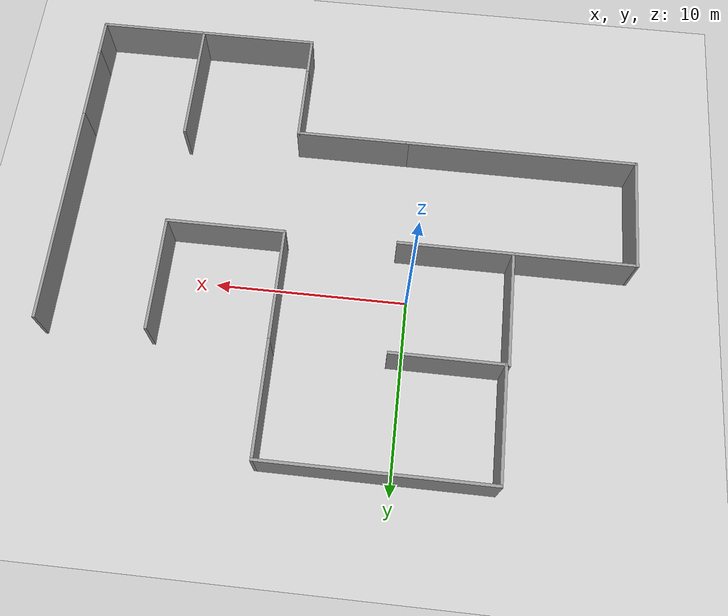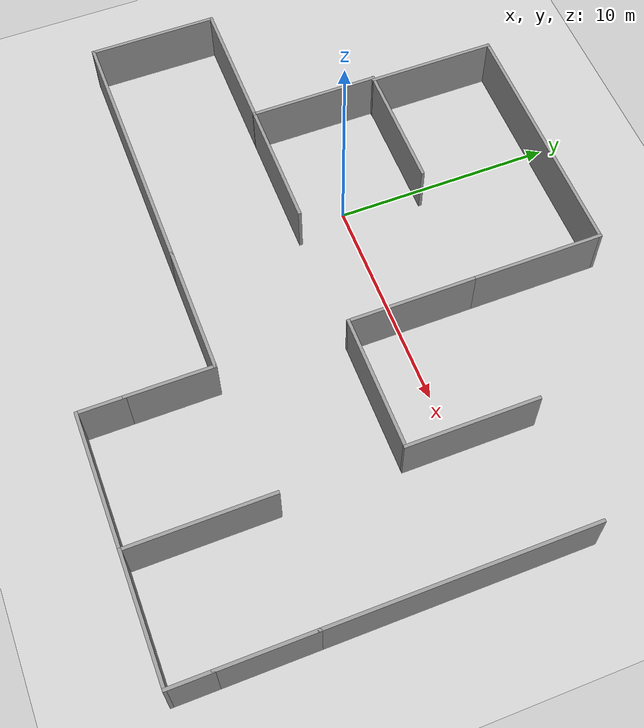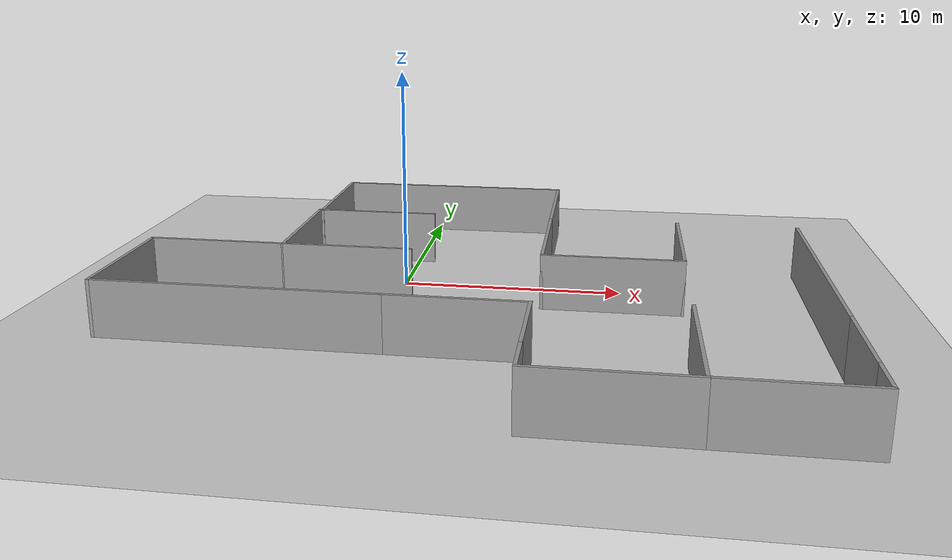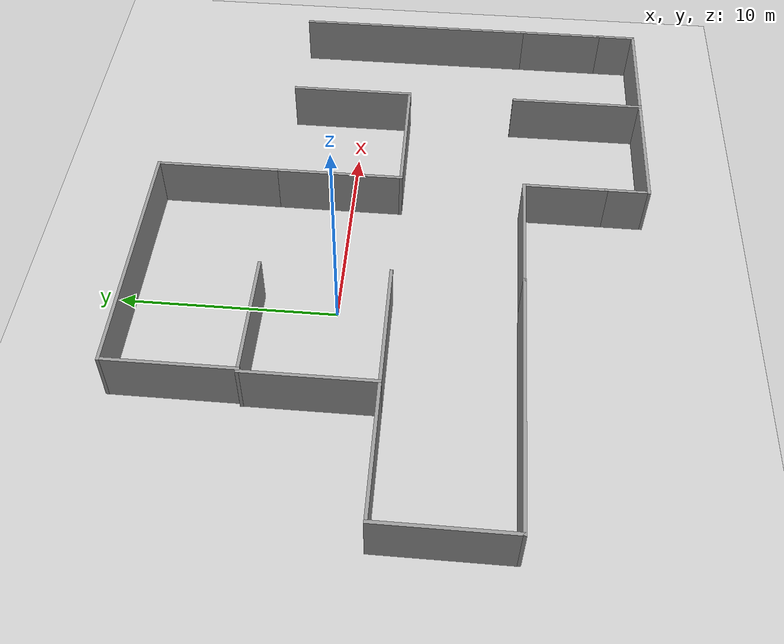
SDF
<sdf version="1.7">
 <world name="default">
  <light name="sun" type="directional">
   <pose>0 0 10 0 -0 0</pose>
   <diffuse>0.8 0.8 0.8 1</diffuse>
   <specular>0.1 0.1 0.1 1</specular>
   <attenuation>
    <range>1000</range>
    <constant>0.9</constant>
    <linear>0.01</linear>
    <quadratic>0.001</quadratic>
   </attenuation>
   <direction>-0.5 0.5 -1</direction>
   <spot><inner_angle>0</inner_angle><outer_angle>0</outer_angle><falloff>0</falloff></spot>
  </light>
  <model name="ground_plane">
   <static>1</static>
   <link name="link">
    <collision name="collision">
     <geometry><plane><normal>0 0 1</normal><size>100 100</size></plane></geometry>
     <surface><friction><ode><mu>100</mu><mu2>50</mu2></ode></friction></surface>
    </collision>
    <visual name="visual">
     <cast_shadows>0</cast_shadows>
     <geometry><plane><normal>0 0 1</normal><size>100 100</size></plane></geometry>
     <material>
      <script><uri>file://media/materials/scripts/gazebo.material</uri><name>Gazebo/Grey</name></script>
     </material>
    </visual>
   </link>
  </model>
  <gravity>0 0 -9.8</gravity>
  <magnetic_field>6e-06 2.3e-05 -4.2e-05</magnetic_field>
  <atmosphere type="adiabatic"/>
  <physics name="default_physics" default="0" type="ode">
   <max_step_size>0.001</max_step_size>
   <real_time_factor>1</real_time_factor>
   <real_time_update_rate>1000</real_time_update_rate>
  </physics>
  <scene><ambient>0.4 0.4 0.4 1</ambient><background>0.7 0.7 0.7 1</background><shadows>1</shadows></scene>
  <spherical_coordinates>
   <surface_model>EARTH_WGS84</surface_model>
   <latitude_deg>0</latitude_deg>
   <longitude_deg>0</longitude_deg>
   <elevation>0</elevation>
   <heading_deg>0</heading_deg>
  </spherical_coordinates>
  <audio><device>default</device></audio>
  <model name="mazemap1">
   <pose>3.4515 -2.36728 0 0 -0 0</pose>
   <link name="Wall_26">
    <collision name="Wall_26_Collision">
     <geometry><box><size>6.01961 0.15 2.5</size></box></geometry>
     <pose>0 0 1.25 0 -0 0</pose>
    </collision>
    <visual name="Wall_26_Visual">
     <pose>0 0 1.25 0 -0 0</pose>
     <geometry><box><size>6.01961 0.15 2.5</size></box></geometry>
     <material>
      <script><uri>file://media/materials/scripts/gazebo.material</uri><name>Gazebo/Grey</name></script>
      <ambient>1 1 1 1</ambient>
     </material>
     <meta><layer>0</layer></meta>
    </visual>
    <pose>-8.59485 2.93481 0 0 -0 -1.56984</pose>
   </link>
   <link name="Wall_27">
    <collision name="Wall_27_Collision">
     <geometry><box><size>6 0.15 2.5</size></box></geometry>
     <pose>0 0 1.25 0 -0 0</pose>
    </collision>
    <visual name="Wall_27_Visual">
     <pose>0 0 1.25 0 -0 0</pose>
     <geometry><box><size>6 0.15 2.5</size></box></geometry>
     <material>
      <script><uri>file://media/materials/scripts/gazebo.material</uri><name>Gazebo/Grey</name></script>
      <ambient>1 1 1 1</ambient>
     </material>
     <meta><layer>0</layer></meta>
    </visual>
    <pose>-5.65 1e-06 0 0 -0 0</pose>
   </link>
   <link name="Wall_29">
    <collision name="Wall_29_Collision">
     <geometry><box><size>6 0.15 2.5</size></box></geometry>
     <pose>0 0 1.25 0 -0 0</pose>
    </collision>
    <visual name="Wall_29_Visual">
     <pose>0 0 1.25 0 -0 0</pose>
     <geometry><box><size>6 0.15 2.5</size></box></geometry>
     <material>
      <script><uri>file://media/materials/scripts/gazebo.material</uri><name>Gazebo/Grey</name></script>
      <ambient>1 1 1 1</ambient>
     </material>
     <meta><layer>0</layer></meta>
    </visual>
    <pose>-5.68386 5.86961 0 0 -0 0</pose>
   </link>
   <link name="Wall_32">
    <collision name="Wall_32_Collision">
     <geometry><box><size>6 0.15 2.5</size></box></geometry>
     <pose>0 0 1.25 0 -0 0</pose>
    </collision>
    <visual name="Wall_32_Visual">
     <pose>0 0 1.25 0 -0 0</pose>
     <geometry><box><size>6 0.15 2.5</size></box></geometry>
     <material>
      <script><uri>file://media/materials/scripts/gazebo.material</uri><name>Gazebo/Grey</name></script>
      <ambient>1 1 1 1</ambient>
     </material>
     <meta><layer>0</layer></meta>
    </visual>
    <pose>3.125 2.925 0 0 -0 1.5708</pose>
   </link>
   <link name="Wall_36">
    <collision name="Wall_36_Collision">
     <geometry><box><size>6 0.15 2.5</size></box></geometry>
     <pose>0 0 1.25 0 -0 0</pose>
    </collision>
    <visual name="Wall_36_Visual">
     <pose>0 0 1.25 0 -0 0</pose>
     <geometry><box><size>6 0.15 2.5</size></box></geometry>
     <material>
      <script><uri>file://media/materials/scripts/gazebo.material</uri><name>Gazebo/Grey</name></script>
      <ambient>1 1 1 1</ambient>
     </material>
     <meta><layer>0</layer></meta>
    </visual>
    <pose>3.125 8.775 0 0 -0 1.5708</pose>
   </link>
   <link name="Wall_37">
    <collision name="Wall_37_Collision">
     <geometry><box><size>11.75 0.15 2.5</size></box></geometry>
     <pose>0 0 1.25 0 -0 0</pose>
    </collision>
    <visual name="Wall_37_Visual">
     <pose>0 0 1.25 0 -0 0</pose>
     <geometry><box><size>11.75 0.15 2.5</size></box></geometry>
     <material>
      <script><uri>file://media/materials/scripts/gazebo.material</uri><name>Gazebo/Grey</name></script>
      <ambient>1 1 1 1</ambient>
     </material>
     <meta><layer>0</layer></meta>
    </visual>
    <pose>-2.675 11.7 0 0 -0 3.14159</pose>
   </link>
   <link name="Wall_41">
    <collision name="Wall_41_Collision">
     <geometry><box><size>6 0.15 2.5</size></box></geometry>
     <pose>0 0 1.25 0 -0 0</pose>
    </collision>
    <visual name="Wall_41_Visual">
     <pose>0 0 1.25 0 -0 0</pose>
     <geometry><box><size>6 0.15 2.5</size></box></geometry>
     <material>
      <script><uri>file://media/materials/scripts/gazebo.material</uri><name>Gazebo/Grey</name></script>
      <ambient>1 1 1 1</ambient>
     </material>
     <meta><layer>0</layer></meta>
    </visual>
    <pose>-8.475 8.775 0 0 -0 -1.5708</pose>
   </link>
   <link name="Wall_45">
    <collision name="Wall_45_Collision">
     <geometry><box><size>6 0.15 2.5</size></box></geometry>
     <pose>0 0 1.25 0 -0 0</pose>
    </collision>
    <visual name="Wall_45_Visual">
     <pose>0 0 1.25 0 -0 0</pose>
     <geometry><box><size>6 0.15 2.5</size></box></geometry>
     <material>
      <script><uri>file://media/materials/scripts/gazebo.material</uri><name>Gazebo/Grey</name></script>
      <ambient>1 1 1 1</ambient>
     </material>
     <meta><layer>0</layer></meta>
    </visual>
    <pose>0.2 -5.85 0 0 -0 0</pose>
   </link>
   <link name="Wall_47">
    <collision name="Wall_47_Collision">
     <geometry><box><size>12.25 0.15 2.5</size></box></geometry>
     <pose>0 0 1.25 0 -0 0</pose>
    </collision>
    <visual name="Wall_47_Visual">
     <pose>0 0 1.25 0 -0 0</pose>
     <geometry><box><size>12.25 0.15 2.5</size></box></geometry>
     <material>
      <script><uri>file://media/materials/scripts/gazebo.material</uri><name>Gazebo/Grey</name></script>
      <ambient>1 1 1 1</ambient>
     </material>
     <meta><layer>0</layer></meta>
    </visual>
    <pose>-8.775 -5.85 0 0 -0 3.14159</pose>
   </link>
   <link name="Wall_48">
    <collision name="Wall_48_Collision">
     <geometry><box><size>6 0.15 2.5</size></box></geometry>
     <pose>0 0 1.25 0 -0 0</pose>
    </collision>
    <visual name="Wall_48_Visual">
     <pose>0 0 1.25 0 -0 0</pose>
     <geometry><box><size>6 0.15 2.5</size></box></geometry>
     <material>
      <script><uri>file://media/materials/scripts/gazebo.material</uri><name>Gazebo/Grey</name></script>
      <ambient>1 1 1 1</ambient>
     </material>
     <meta><layer>0</layer></meta>
    </visual>
    <pose>-14.825 -2.925 0 0 -0 1.5708</pose>
   </link>
   <link name="Wall_49">
    <collision name="Wall_49_Collision">
     <geometry><box><size>6.25 0.15 2.5</size></box></geometry>
     <pose>0 0 1.25 0 -0 0</pose>
    </collision>
    <visual name="Wall_49_Visual">
     <pose>0 0 1.25 0 -0 0</pose>
     <geometry><box><size>6.25 0.15 2.5</size></box></geometry>
     <material>
      <script><uri>file://media/materials/scripts/gazebo.material</uri><name>Gazebo/Grey</name></script>
      <ambient>1 1 1 1</ambient>
     </material>
     <meta><layer>0</layer></meta>
    </visual>
    <pose>-11.775 1e-06 0 0 -0 0</pose>
   </link>
   <link name="Wall_51">
    <collision name="Wall_51_Collision">
     <geometry><box><size>6.25 0.15 2.5</size></box></geometry>
     <pose>0 0 1.25 0 -0 0</pose>
    </collision>
    <visual name="Wall_51_Visual">
     <pose>0 0 1.25 0 -0 0</pose>
     <geometry><box><size>6.25 0.15 2.5</size></box></geometry>
     <material>
      <script><uri>file://media/materials/scripts/gazebo.material</uri><name>Gazebo/Grey</name></script>
      <ambient>1 1 1 1</ambient>
     </material>
     <meta><layer>0</layer></meta>
    </visual>
    <pose>6.175 1e-06 0 0 -0 0</pose>
   </link>
   <link name="Wall_52">
    <collision name="Wall_52_Collision">
     <geometry><box><size>6 0.15 2.5</size></box></geometry>
     <pose>0 0 1.25 0 -0 0</pose>
    </collision>
    <visual name="Wall_52_Visual">
     <pose>0 0 1.25 0 -0 0</pose>
     <geometry><box><size>6 0.15 2.5</size></box></geometry>
     <material>
      <script><uri>file://media/materials/scripts/gazebo.material</uri><name>Gazebo/Grey</name></script>
      <ambient>1 1 1 1</ambient>
     </material>
     <meta><layer>0</layer></meta>
    </visual>
    <pose>9.225 2.925 0 0 -0 1.5708</pose>
   </link>
   <link name="Wall_56">
    <collision name="Wall_56_Collision">
     <geometry><box><size>11.75 0.15 2.5</size></box></geometry>
     <pose>0 0 1.25 0 -0 0</pose>
    </collision>
    <visual name="Wall_56_Visual">
     <pose>0 0 1.25 0 -0 0</pose>
     <geometry><box><size>11.75 0.15 2.5</size></box></geometry>
     <material>
      <script><uri>file://media/materials/scripts/gazebo.material</uri><name>Gazebo/Grey</name></script>
      <ambient>1 1 1 1</ambient>
     </material>
     <meta><layer>0</layer></meta>
    </visual>
    <pose>14.825 0.050001 0 0 -0 -1.5708</pose>
   </link>
   <link name="Wall_58">
    <collision name="Wall_58_Collision">
     <geometry><box><size>4 0.15 2.5</size></box></geometry>
     <pose>0 0 1.25 0 -0 0</pose>
    </collision>
    <visual name="Wall_58_Visual">
     <pose>0 0 1.25 0 -0 0</pose>
     <geometry><box><size>4 0.15 2.5</size></box></geometry>
     <material>
      <script><uri>file://media/materials/scripts/gazebo.material</uri><name>Gazebo/Grey</name></script>
      <ambient>1 1 1 1</ambient>
     </material>
     <meta><layer>0</layer></meta>
    </visual>
    <pose>3.125 -7.775 0 0 -0 -1.5708</pose>
   </link>
   <link name="Wall_63">
    <collision name="Wall_63_Collision">
     <geometry><box><size>4.25 0.15 2.5</size></box></geometry>
     <pose>0 0 1.25 0 -0 0</pose>
    </collision>
    <visual name="Wall_63_Visual">
     <pose>0 0 1.25 0 -0 0</pose>
     <geometry><box><size>4.25 0.15 2.5</size></box></geometry>
     <material>
      <script><uri>file://media/materials/scripts/gazebo.material</uri><name>Gazebo/Grey</name></script>
      <ambient>1 1 1 1</ambient>
     </material>
     <meta><layer>0</layer></meta>
    </visual>
    <pose>14.825 -7.8 0 0 -0 -1.5708</pose>
   </link>
   <link name="Wall_64">
    <collision name="Wall_64_Collision">
     <geometry><box><size>2 0.15 2.5</size></box></geometry>
     <pose>0 0 1.25 0 -0 0</pose>
    </collision>
    <visual name="Wall_64_Visual">
     <pose>0 0 1.25 0 -0 0</pose>
     <geometry><box><size>2 0.15 2.5</size></box></geometry>
     <material>
      <script><uri>file://media/materials/scripts/gazebo.material</uri><name>Gazebo/Grey</name></script>
      <ambient>1 1 1 1</ambient>
     </material>
     <meta><layer>0</layer></meta>
    </visual>
    <pose>14.825 -10.775 0 0 -0 -1.5708</pose>
   </link>
   <link name="Wall_65">
    <collision name="Wall_65_Collision">
     <geometry><box><size>5.75 0.15 2.5</size></box></geometry>
     <pose>0 0 1.25 0 -0 0</pose>
    </collision>
    <visual name="Wall_65_Visual">
     <pose>0 0 1.25 0 -0 0</pose>
     <geometry><box><size>5.75 0.15 2.5</size></box></geometry>
     <material>
      <script><uri>file://media/materials/scripts/gazebo.material</uri><name>Gazebo/Grey</name></script>
      <ambient>1 1 1 1</ambient>
     </material>
     <meta><layer>0</layer></meta>
    </visual>
    <pose>12.025 -11.7 0 0 -0 3.14159</pose>
   </link>
   <link name="Wall_68">
    <collision name="Wall_68_Collision">
     <geometry><box><size>6.5 0.15 2.5</size></box></geometry>
     <pose>0 0 1.25 0 -0 0</pose>
    </collision>
    <visual name="Wall_68_Visual">
     <pose>0 0 1.25 0 -0 0</pose>
     <geometry><box><size>6.5 0.15 2.5</size></box></geometry>
     <material>
      <script><uri>file://media/materials/scripts/gazebo.material</uri><name>Gazebo/Grey</name></script>
      <ambient>1 1 1 1</ambient>
     </material>
     <meta><layer>0</layer></meta>
    </visual>
    <pose>9.225 -8.525 0 0 -0 1.5708</pose>
   </link>
   <link name="Wall_70">
    <collision name="Wall_70_Collision">
     <geometry><box><size>6.25 0.15 2.5</size></box></geometry>
     <pose>0 0 1.25 0 -0 0</pose>
    </collision>
    <visual name="Wall_70_Visual">
     <pose>0 0 1.25 0 -0 0</pose>
     <geometry><box><size>6.25 0.15 2.5</size></box></geometry>
     <material>
      <script><uri>file://media/materials/scripts/gazebo.material</uri><name>Gazebo/Grey</name></script>
      <ambient>1 1 1 1</ambient>
     </material>
     <meta><layer>0</layer></meta>
    </visual>
    <pose>6.175 -11.7 0 0 -0 3.14159</pose>
   </link>
   <link name="Wall_72">
    <collision name="Wall_72_Collision">
     <geometry><box><size>2 0.15 2.5</size></box></geometry>
     <pose>0 0 1.25 0 -0 0</pose>
    </collision>
    <visual name="Wall_72_Visual">
     <pose>0 0 1.25 0 -0 0</pose>
     <geometry><box><size>2 0.15 2.5</size></box></geometry>
     <material>
      <script><uri>file://media/materials/scripts/gazebo.material</uri><name>Gazebo/Grey</name></script>
      <ambient>1 1 1 1</ambient>
     </material>
     <meta><layer>0</layer></meta>
    </visual>
    <pose>3.125 -10.625 0 0 -0 -1.5708</pose>
   </link>
   <static>1</static>
  </model>
 </world>
</sdf>
